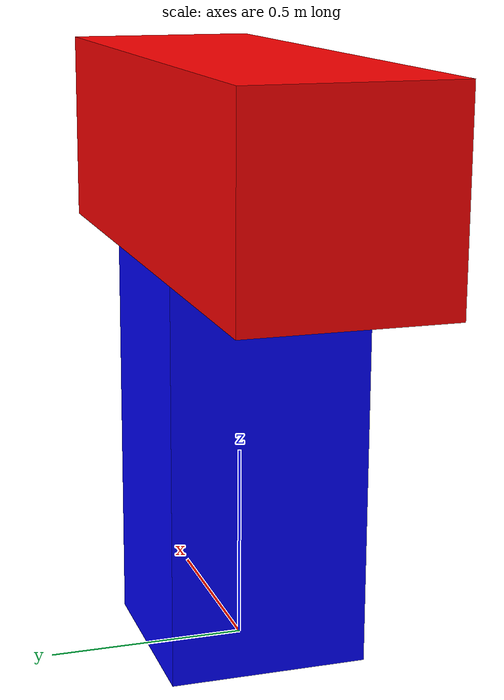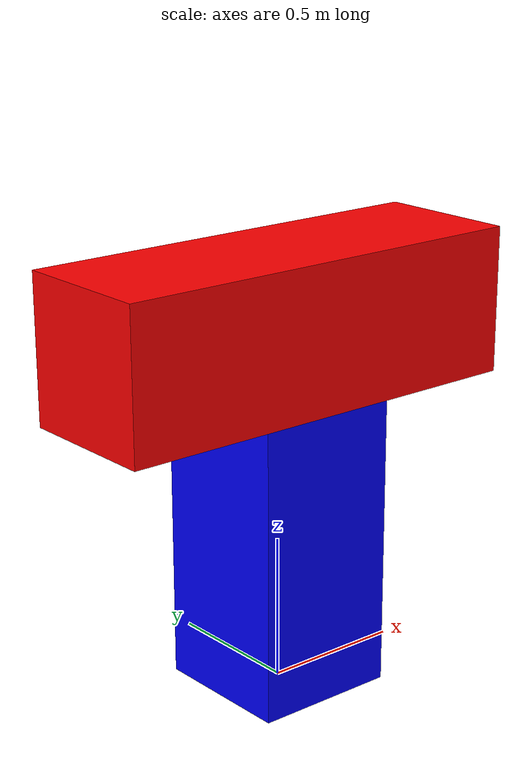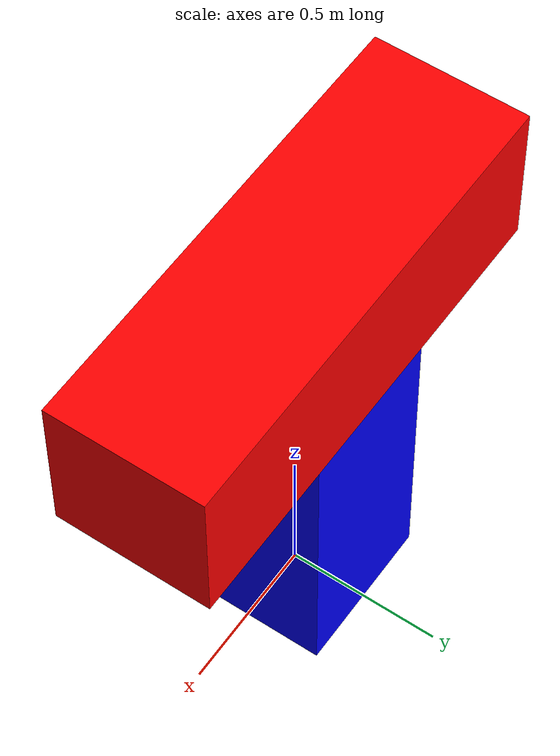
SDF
<?xml version="1.0"?>
<sdf version="1.6">
  <model name="T-shape-obstacle">
    <static>true</static>

    <!-- Vertical trunk (blue) -->
    <link name="trunk">
      <pose>0 0 0.5 0 0 0</pose>
      <collision name="collision">
        <geometry>
          <box>
            <size>0.5 0.5 1.0</size>
          </box>
        </geometry>
      </collision>
      <visual name="visual">
        <geometry>
          <box>
            <size>0.5 0.5 1.0</size>
          </box>
        </geometry>
        <material>
          <ambient>0.0 0.0 1.0 1.0</ambient>
          <diffuse>0.0 0.0 1.0 1.0</diffuse>
        </material>
      </visual>
    </link>

    <!-- Top horizontal bar (red) -->
    <link name="top_bar">
      <pose>0 0 1.25 0 0 0</pose>
      <collision name="collision">
        <geometry>
          <box>
            <size>1.5 0.5 0.5</size>
          </box>
        </geometry>
      </collision>
      <visual name="visual">
        <geometry>
          <box>
            <size>1.5 0.5 0.5</size>
          </box>
        </geometry>
        <material>
          <ambient>1.0 0.0 0.0 1.0</ambient>
          <diffuse>1.0 0.0 0.0 1.0</diffuse>
        </material>
      </visual>
    </link>

  </model>
</sdf>
